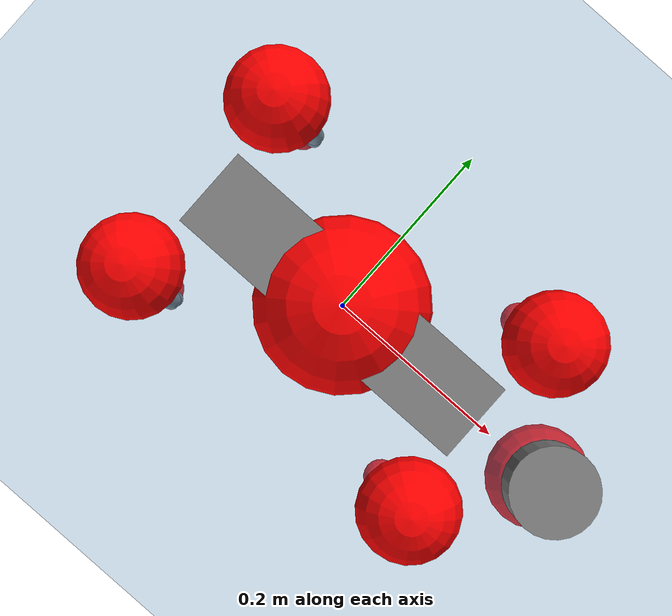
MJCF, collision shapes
<mujoco model="go2">
  <compiler angle="radian" assetdir="assets" balanceinertia="true" inertiafromgeom="false"/>

  <option timestep="0.005" density="1.2" viscosity="2e-05"/>

  <size nkey="1"/>

  <visual>
    <quality shadowsize="8192"/>
    <map shadowclip="0.5"/>
  </visual>

  <default>
    <default class="/">
      <geom contype="0" conaffinity="0" group="1" solref="-1000 -80"/>
      <site size="0.01 0.005 0.005" group="5"/>
      <general forcelimited="true" biastype="affine" gainprm="20" biasprm="0 -20 -0.5"/>
      <default class="go2">
        <joint armature="0.01" damping="0.01" frictionloss="0.2"/>
        <geom condim="1" margin="0.001"/>
        <default class="visual">
          <geom type="mesh" group="2"/>
        </default>
        <default class="collision">
          <geom group="3"/>
          <default class="foot">
            <geom size="0.022 0 0" condim="6" priority="1" friction="0.8 0.02 0.01" solimp="0.015 1 0.022"/>
          </default>
        </default>
        <default class="reward_collision_sphere">
          <geom group="5" rgba="1 0 0 1"/>
        </default>
      </default>
    </default>
  </default>

  <asset>
    <texture type="skybox" colorspace="auto" name="//unnamed_texture_0" builtin="gradient" rgb1="0.95 0.95 0.95" rgb2="0.95 0.95 0.95" width="100" height="600"/>
    <texture type="2d" colorspace="auto" name="texplane" builtin="checker" rgb1="0.345 0.575 0.748" rgb2="0.345 0.575 0.748" markrgb="1 1 1" width="512" height="512"/>
    <material name="MatPlane" class="/" texture="texplane" texuniform="true" texrepeat="2 2" specular="0.9"/>
    <material name="metal" class="/" rgba="0.9 0.95 0.95 1"/>
    <material name="black" class="/" rgba="0 0 0 1"/>
    <material name="white" class="/"/>
    <material name="gray" class="/" rgba="0.671705 0.692426 0.77427 1"/>
    <mesh name="base_0" class="/" file="base_0.obj"/>
    <mesh name="base_1" class="/" file="base_1.obj"/>
    <mesh name="base_2" class="/" file="base_2.obj"/>
    <mesh name="base_3" class="/" file="base_3.obj"/>
    <mesh name="base_4" class="/" file="base_4.obj"/>
    <mesh name="hip_0" class="/" file="hip_0.obj"/>
    <mesh name="hip_1" class="/" file="hip_1.obj"/>
    <mesh name="thigh_0" class="/" file="thigh_0.obj"/>
    <mesh name="thigh_1" class="/" file="thigh_1.obj"/>
    <mesh name="thigh_mirror_0" class="/" file="thigh_mirror_0.obj"/>
    <mesh name="thigh_mirror_1" class="/" file="thigh_mirror_1.obj"/>
    <mesh name="calf_0" class="/" file="calf_0.obj"/>
    <mesh name="calf_1" class="/" file="calf_1.obj"/>
    <mesh name="calf_mirror_0" class="/" file="calf_mirror_0.obj"/>
    <mesh name="calf_mirror_1" class="/" file="calf_mirror_1.obj"/>
    <mesh name="foot" class="/" file="foot.obj"/>
  </asset>

  <worldbody>
    <geom name="floor" class="/" size="100 100 0.125" type="plane" group="0" material="MatPlane"/>
    <light name="toplight_shadow" class="/" pos="0 0 5" dir="0.0990148 0.0990148 -0.990148" type="directional" ambient="0.04 0.04 0.04" diffuse="0.55 0.55 0.55" specular="0.12 0.12 0.12"/>
    <light name="toplight_fill" class="/" pos="0 0 5" dir="0.0990148 0.0990148 -0.990148" type="directional" castshadow="false" ambient="0.04 0.04 0.04" diffuse="0.3 0.3 0.3" specular="0.08 0.08 0.08"/>
    <body name="trunk" childclass="go2" pos="-0.000476471 9.69588e-05 0.000186789" quat="1 0.000125871 -1.94376e-05 -6.89365e-05">
      <inertial pos="0.0199688 0.00049726 -0.00455623" quat="0.00116388 0.714035 -0.00295193 0.700103" mass="5.56273" diaginertia="0.0962804 0.0845453 0.0102349"/>
      <joint name="//unnamed_joint_0" type="free" armature="0" damping="0" frictionloss="0"/>
      <geom name="//unnamed_geom_1" class="visual" material="black" mesh="base_0"/>
      <geom name="//unnamed_geom_2" class="visual" material="black" mesh="base_1"/>
      <geom name="//unnamed_geom_3" class="visual" material="black" mesh="base_2"/>
      <geom name="//unnamed_geom_4" class="visual" material="white" mesh="base_3"/>
      <geom name="//unnamed_geom_5" class="visual" material="gray" mesh="base_4"/>
      <geom name="trunk_1" class="collision" size="0.175028 0.0435012 0.0530389" type="box"/>
      <geom name="trunk_2" class="collision" size="0.0465254 0.0418728" pos="0.279236 0 0.00839946" type="cylinder"/>
      <geom name="trunk_3" class="collision" size="0.0437338" pos="0.287075 0 -0.0503968"/>
      <geom name="//unnamed_geom_9" class="reward_collision_sphere" size="0.0930507"/>
      <geom name="//unnamed_geom_10" class="reward_collision_sphere" size="0.0558304" pos="0.274337 0 -0.0377976"/>
      <site name="imu" pos="-0.0255161 -0.000173543 0.0361035" size="0.00930507"/>
      <camera name="track" pos="0 -1.9436 0" quat="0.707107 0.707107 0 0" mode="trackcom"/>
      <camera name="ego_camera" pos="0.30569 0 0.0377976" quat="-0.5 -0.5 0.5 0.5"/>
      <body name="FL_hip" pos="0.189938 0.0463587 0.00260372" quat="1 9.33182e-06 -1.8825e-05 -4.16336e-06">
        <inertial pos="-0.00517591 0.00287528 -4.63149e-05" quat="0.497309 0.499017 0.505482 0.498151" mass="0.538446" diaginertia="0.000793491 0.000517116 0.000199393"/>
        <joint name="FL_hip_joint" pos="0 0 0" axis="0.999995 -0.00313409 0.000107853" stiffness="0.00337767" range="-1.04705 1.04738" armature="0.0093308" damping="0.00355244" frictionloss="0.194212"/>
        <geom name="//unnamed_geom_11" class="visual" material="metal" mesh="hip_0"/>
        <geom name="//unnamed_geom_12" class="visual" material="gray" mesh="hip_1"/>
        <geom name="//unnamed_geom_13" class="collision" size="0.0428033 0.0186101" pos="0 0.0777439 0" quat="0.707107 0.707107 0 0" type="cylinder"/>
        <geom name="//unnamed_geom_14" class="reward_collision_sphere" size="0.0558304" pos="0 0.0680259 0"/>
        <body name="FL_thigh" pos="0.000228133 0.092954 0.00106507" quat="1 0.000110819 -9.46778e-08 4.08082e-05">
          <inertial pos="-0.00394511 -0.0215958 -0.027999" quat="0.829432 0.0877238 -0.0224393 0.551221" mass="0.941661" diaginertia="0.00539714 0.00505979 0.00037053"/>
          <joint name="FL_thigh_joint" pos="0 0 0" axis="-0.00568132 0.999978 -0.00334684" stiffness="0.00611559" range="-1.57658 3.47521" armature="0.00907625" damping="0.00395864" frictionloss="0.192839"/>
          <geom name="//unnamed_geom_15" class="visual" material="metal" mesh="thigh_0"/>
          <geom name="//unnamed_geom_16" class="visual" material="gray" mesh="thigh_1"/>
          <geom name="//unnamed_geom_17" class="collision" size="0.099099 0.0113987 0.0158186" pos="0 0 -0.0894543" quat="0.707107 0 0.707107 0" type="box"/>
          <body name="FL_calf" pos="-0.000503503 -0.000938141 -0.178978" quat="1 1.0285e-05 0.000127486 0.0001235">
            <inertial pos="0.00626697 -6.40663e-05 -0.117551" quat="0.710599 0.00132351 -0.00359104 0.703587" mass="0.193489" diaginertia="0.00135131 0.00126005 2.22609e-05"/>
            <joint name="FL_calf_joint" pos="0 0 0" axis="0.00483554 0.999987 -0.00142111" stiffness="0.000448523" range="-2.74169 -0.836832" armature="0.00943278" damping="0.00234108" frictionloss="0.187305"/>
            <geom name="//unnamed_geom_18" class="visual" material="gray" mesh="calf_0"/>
            <geom name="//unnamed_geom_19" class="visual" material="black" mesh="calf_1"/>
            <geom name="FL_calf0" class="collision" size="0.0111661 0.0558304" pos="0.00783821 0 -0.0503968" quat="0.994493 0 -0.104807 0" type="cylinder"/>
            <geom name="//unnamed_geom_21" class="collision" size="0.0102356 0.0302415" pos="0.0195955 0 -0.124312" quat="0.999688 0 0.0249974 0" type="cylinder"/>
            <geom name="//unnamed_geom_22" class="visual" pos="0 0 -0.178909" quat="1 0 0 0" material="black" mesh="foot"/>
            <geom name="FL_foot" class="foot" size="0.0180196" pos="-0.00195955 0 -0.178909"/>
            <geom name="//unnamed_geom_24" class="reward_collision_sphere" size="0.0232627"/>
            <geom name="//unnamed_geom_25" class="reward_collision_sphere" size="0.0232627" pos="-0.00195955 0 -0.178909"/>
            <site name="FL_foot" class="foot" pos="-0.00195955 0 -0.178909" size="0.00930507"/>
          </body>
        </body>
      </body>
      <body name="FR_hip" pos="0.190331 -0.0447115 0.000152801" quat="1 2.21249e-06 -2.75405e-06 3.33179e-05">
        <inertial pos="-0.00432707 -0.00246588 0.000546984" quat="0.497568 0.506215 0.49999 0.496167" mass="0.549485" diaginertia="0.000807214 0.000516801 0.00020316"/>
        <joint name="FR_hip_joint" pos="0 0 0" axis="1 0.000506364 0.000428734" stiffness="0.000702946" range="-1.04402 1.05133" armature="0.00928127" damping="0.0161802" frictionloss="0.186953"/>
        <geom name="//unnamed_geom_26" class="visual" pos="0 1.14864e-09 4.92677e-08" quat="4.63268e-05 1 0 0" material="metal" mesh="hip_0"/>
        <geom name="//unnamed_geom_27" class="visual" pos="0 1.86209e-09 -1.21858e-07" quat="4.63268e-05 1 0 0" material="gray" mesh="hip_1"/>
        <geom name="//unnamed_geom_28" class="collision" size="0.0428033 0.0186101" pos="0 -0.0777439 0" quat="0.707107 0.707107 0 0" type="cylinder"/>
        <geom name="//unnamed_geom_29" class="reward_collision_sphere" size="0.0558304" pos="0 -0.0680259 0"/>
        <body name="FR_thigh" pos="-0.000252536 -0.0923892 0.000696649" quat="1 2.75165e-06 4.57606e-05 0.000139969">
          <inertial pos="-0.00339667 0.021464 -0.0265753" quat="0.551831 -0.0176705 0.0877516 0.829138" mass="0.915728" diaginertia="0.00540597 0.0050805 0.000365575"/>
          <joint name="FR_thigh_joint" pos="0 0 0" axis="-0.000450482 -1 0.000263189" range="-3.48681 1.56125" armature="0.00967902" damping="0.016044" frictionloss="0.184634"/>
          <geom name="//unnamed_geom_30" class="visual" material="metal" mesh="thigh_mirror_0"/>
          <geom name="//unnamed_geom_31" class="visual" material="gray" mesh="thigh_mirror_1"/>
          <geom name="//unnamed_geom_32" class="collision" size="0.099099 0.0113987 0.0158186" pos="0 0 -0.0894543" quat="0.707107 0 0.707107 0" type="box"/>
          <body name="FR_calf" pos="0.000364308 -0.000361577 -0.178886" quat="1 0.000383162 -5.89767e-05 -0.000127509">
            <inertial pos="0.00699617 0.000740896 -0.119198" quat="0.703928 -0.00443415 0.000510424 0.710258" mass="0.190796" diaginertia="0.00133074 0.00126181 2.19712e-05"/>
            <joint name="FR_calf_joint" pos="0 0 0" axis="0.00102693 -0.999999 0.0012929" range="0.836668 2.73666" armature="0.00894872" damping="0.00894405" frictionloss="0.183357"/>
            <geom name="//unnamed_geom_33" class="visual" material="gray" mesh="calf_mirror_0"/>
            <geom name="//unnamed_geom_34" class="visual" material="black" mesh="calf_mirror_1"/>
            <geom name="FR_calf0" class="collision" size="0.0120966 0.0558304" pos="0.00979777 0 -0.0503968" quat="0.995004 0 -0.0998334 0" type="cylinder"/>
            <geom name="//unnamed_geom_36" class="collision" size="0.0102356 0.0302415" pos="0.0195955 0 -0.124312" quat="0.999688 0 0.0249974 0" type="cylinder"/>
            <geom name="//unnamed_geom_37" class="visual" pos="0 0 -0.178909" quat="1 0 0 0" material="black" mesh="foot"/>
            <geom name="FR_foot" class="foot" size="0.0215392" pos="-0.00195955 0 -0.178909"/>
            <geom name="//unnamed_geom_39" class="reward_collision_sphere" size="0.0232627"/>
            <geom name="//unnamed_geom_40" class="reward_collision_sphere" size="0.0232627" pos="-0.00195955 0 -0.178909"/>
            <site name="FR_foot" class="foot" pos="-0.00195955 0 -0.178909" size="0.00930507"/>
          </body>
        </body>
      </body>
      <body name="RL_hip" pos="-0.189956 0.0460104 -0.000604705" quat="1 -0.000213759 2.53772e-05 -0.00019273">
        <inertial pos="0.00526554 0.00135094 -0.000979399" quat="0.506836 0.496312 0.499157 0.497628" mass="0.546835" diaginertia="0.00080541 0.000513925 0.000202365"/>
        <joint name="RL_hip_joint" pos="0 0 0" axis="-0.999823 0.00476515 -0.0181809" stiffness="0.00244127" range="-1.04979 1.05229" armature="0.00939334" damping="0.00858389" frictionloss="0.186219"/>
        <geom name="//unnamed_geom_41" class="visual" pos="-1.21815e-09 0 -2.38785e-07" quat="4.63268e-05 0 1 0" material="metal" mesh="hip_0"/>
        <geom name="//unnamed_geom_42" class="visual" pos="-1.97476e-09 0 -2.11768e-07" quat="4.63268e-05 0 1 0" material="gray" mesh="hip_1"/>
        <geom name="//unnamed_geom_43" class="collision" size="0.0428033 0.0186101" pos="0 0.0777439 0" quat="0.707107 0.707107 0 0" type="cylinder"/>
        <geom name="//unnamed_geom_44" class="reward_collision_sphere" size="0.0558304" pos="0 0.0680259 0"/>
        <body name="RL_thigh" pos="0.00019925 0.0922586 -0.00123113" quat="1 2.78632e-05 -2.72877e-05 5.24956e-06">
          <inertial pos="-0.00412517 -0.0212871 -0.0276443" quat="0.829532 0.0847737 -0.0200652 0.551623" mass="0.939271" diaginertia="0.00540308 0.0050622 0.000371714"/>
          <joint name="RL_thigh_joint" pos="0 0 0" axis="0.00089489 0.999998 0.00180966" stiffness="0.00148901" range="-0.512569 4.5567" armature="0.00947931" damping="0.0109829" frictionloss="0.186182"/>
          <geom name="//unnamed_geom_45" class="visual" material="metal" mesh="thigh_0"/>
          <geom name="//unnamed_geom_46" class="visual" material="gray" mesh="thigh_1"/>
          <geom name="//unnamed_geom_47" class="collision" size="0.099099 0.0113987 0.0158186" pos="0 0 -0.0894543" quat="0.707107 0 0.707107 0" type="box"/>
          <body name="RL_calf" pos="0.000745339 -0.00112651 -0.179497" quat="1 3.36468e-05 6.65306e-05 -5.61206e-05">
            <inertial pos="0.0056224 -0.000767578 -0.118957" quat="0.712131 0.00478552 -0.00293585 0.702024" mass="0.196151" diaginertia="0.00137079 0.0012711 2.24948e-05"/>
            <joint name="RL_calf_joint" pos="0 0 0" axis="-0.00483139 0.999959 0.00762623" range="-2.73144 -0.819614" armature="0.00926781" damping="0" frictionloss="0.192074"/>
            <geom name="//unnamed_geom_48" class="visual" material="gray" mesh="calf_0"/>
            <geom name="//unnamed_geom_49" class="visual" material="black" mesh="calf_1"/>
            <geom name="RL_calf0" class="collision" size="0.0120966 0.0558304" pos="0.00979777 0 -0.0503968" quat="0.995004 0 -0.0998334 0" type="cylinder"/>
            <geom name="//unnamed_geom_51" class="collision" size="0.0102356 0.0302415" pos="0.0195955 0 -0.124312" quat="0.999688 0 0.0249974 0" type="cylinder"/>
            <geom name="//unnamed_geom_52" class="visual" pos="0 0 -0.178909" quat="1 0 0 0" material="black" mesh="foot"/>
            <geom name="RL_foot" class="foot" size="0.0180209" pos="-0.00195955 0 -0.178909"/>
            <geom name="//unnamed_geom_54" class="reward_collision_sphere" size="0.0232627"/>
            <geom name="//unnamed_geom_55" class="reward_collision_sphere" size="0.0232627" pos="-0.00195955 0 -0.178909"/>
            <site name="RL_foot" class="foot" pos="-0.00195955 0 -0.178909" size="0.00930507"/>
          </body>
        </body>
      </body>
      <body name="RR_hip" pos="-0.188908 -0.0454182 -0.00130917" quat="1 -0.000144931 -0.000152332 1.03353e-06">
        <inertial pos="0.00595241 -0.00252526 -2.42335e-06" quat="0.499903 0.499101 0.498274 0.50271" mass="0.53884" diaginertia="0.000794617 0.000514278 0.000199483"/>
        <joint name="RR_hip_joint" pos="0 0 0" axis="-1 -6.30404e-05 6.97542e-06" range="-1.03944 1.03753" armature="0.00938387" damping="0.00705874" frictionloss="0.186637"/>
        <geom name="//unnamed_geom_56" class="visual" pos="1.21787e-09 1.14864e-09 -2.88052e-07" quat="2.14617e-09 4.63268e-05 4.63268e-05 -1" material="metal" mesh="hip_0"/>
        <geom name="//unnamed_geom_57" class="visual" pos="1.97544e-09 1.86209e-09 -8.99101e-08" quat="2.14617e-09 4.63268e-05 4.63268e-05 -1" material="gray" mesh="hip_1"/>
        <geom name="//unnamed_geom_58" class="collision" size="0.0428033 0.0186101" pos="0 -0.0777439 0" quat="0.707107 0.707107 0 0" type="cylinder"/>
        <geom name="//unnamed_geom_59" class="reward_collision_sphere" size="0.0558304" pos="0 -0.0680259 0"/>
        <body name="RR_thigh" pos="0.000404992 -0.0932355 -0.00124669" quat="1 5.66451e-05 -0.000203546 -0.00020604">
          <inertial pos="-0.0033514 0.0210091 -0.0270327" quat="0.551201 -0.0202008 0.0846144 0.829825" mass="0.947344" diaginertia="0.00548228 0.00513499 0.000371642"/>
          <joint name="RR_thigh_joint" pos="0 0 0" axis="0.00170102 -0.99998 -0.00614966" range="-4.55349 0.515861" armature="0.00918929" damping="0.0146775" frictionloss="0.187437"/>
          <geom name="//unnamed_geom_60" class="visual" material="metal" mesh="thigh_mirror_0"/>
          <geom name="//unnamed_geom_61" class="visual" material="gray" mesh="thigh_mirror_1"/>
          <geom name="//unnamed_geom_62" class="collision" size="0.099099 0.0113987 0.0158186" pos="0 0 -0.0894543" quat="0.707107 0 0.707107 0" type="box"/>
          <body name="RR_calf" pos="0.000690739 -0.000247741 -0.179868" quat="1 -1.18082e-05 -1.05108e-05 -9.56035e-05">
            <inertial pos="0.00532394 0.000952925 -0.118497" quat="0.70613 -0.00569177 0.00105952 0.708059" mass="0.193546" diaginertia="0.00134985 0.00126766 2.2377e-05"/>
            <joint name="RR_calf_joint" pos="0 0 0" axis="0.000904928 -0.999992 0.00386227" range="0.833291 2.72143" armature="0.00929082" damping="0.00892815" frictionloss="0.183658"/>
            <geom name="//unnamed_geom_63" class="visual" material="gray" mesh="calf_mirror_0"/>
            <geom name="//unnamed_geom_64" class="visual" material="black" mesh="calf_mirror_1"/>
            <geom name="RR_calf0" class="collision" size="0.0120966 0.0558304" pos="0.00979777 0 -0.0503968" quat="0.995004 0 -0.0998334 0" type="cylinder"/>
            <geom name="//unnamed_geom_66" class="collision" size="0.0102356 0.0302415" pos="0.0195955 0 -0.124312" quat="0.999688 0 0.0249974 0" type="cylinder"/>
            <geom name="//unnamed_geom_67" class="visual" pos="0 0 -0.178909" quat="1 0 0 0" material="black" mesh="foot"/>
            <geom name="RR_foot" class="foot" size="0.0221941" pos="-0.00195955 0 -0.178909"/>
            <geom name="//unnamed_geom_69" class="reward_collision_sphere" size="0.0232627"/>
            <geom name="//unnamed_geom_70" class="reward_collision_sphere" size="0.0232627" pos="-0.00195955 0 -0.178909"/>
            <site name="RR_foot" class="foot" pos="-0.00195955 0 -0.178909" size="0.00930507"/>
          </body>
        </body>
      </body>
    </body>
  </worldbody>

  <contact>
    <pair class="/" geom1="floor" geom2="FL_foot" name="//unnamed_contact_0"/>
    <pair class="/" geom1="floor" geom2="FR_foot" name="//unnamed_contact_1"/>
    <pair class="/" geom1="floor" geom2="RL_foot" name="//unnamed_contact_2"/>
    <pair class="/" geom1="floor" geom2="RR_foot" name="//unnamed_contact_3"/>
  </contact>

  <actuator>
    <general name="FL_hip" class="/" joint="FL_hip_joint" forcerange="-22.6585 22.6585" gainprm="19.0151" biasprm="0 -19.0151 -0.475351"/>
    <general name="FL_thigh" class="/" joint="FL_thigh_joint" forcerange="-22.028 22.028" gainprm="19.0151" biasprm="0 -19.0151 -0.475351"/>
    <general name="FL_calf" class="/" joint="FL_calf_joint" forcerange="-41.8399 41.8399" gainprm="19.0151" biasprm="0 -19.0151 -0.475351"/>
    <general name="FR_hip" class="/" joint="FR_hip_joint" forcerange="-22.1479 22.1479" gainprm="19.0151" biasprm="0 -19.0151 -0.475351"/>
    <general name="FR_thigh" class="/" joint="FR_thigh_joint" forcerange="-21.2844 21.2844" gainprm="19.0151" biasprm="0 -19.0151 -0.475351"/>
    <general name="FR_calf" class="/" joint="FR_calf_joint" forcerange="-41.4575 41.4575" gainprm="19.0151" biasprm="0 -19.0151 -0.475351"/>
    <general name="RL_hip" class="/" joint="RL_hip_joint" forcerange="-22.1554 22.1554" gainprm="19.0151" biasprm="0 -19.0151 -0.475351"/>
    <general name="RL_thigh" class="/" joint="RL_thigh_joint" forcerange="-22.7896 22.7896" gainprm="19.0151" biasprm="0 -19.0151 -0.475351"/>
    <general name="RL_calf" class="/" joint="RL_calf_joint" forcerange="-42.2364 42.2364" gainprm="19.0151" biasprm="0 -19.0151 -0.475351"/>
    <general name="RR_hip" class="/" joint="RR_hip_joint" forcerange="-22.0869 22.0869" gainprm="19.0151" biasprm="0 -19.0151 -0.475351"/>
    <general name="RR_thigh" class="/" joint="RR_thigh_joint" forcerange="-21.6429 21.6429" gainprm="19.0151" biasprm="0 -19.0151 -0.475351"/>
    <general name="RR_calf" class="/" joint="RR_calf_joint" forcerange="-43.0654 43.0654" gainprm="19.0151" biasprm="0 -19.0151 -0.475351"/>
  </actuator>

  <sensor>
    <gyro site="imu" name="imu_angular_velocity"/>
    <velocimeter site="imu" name="imu_linear_velocity"/>
    <framelinvel objtype="site" objname="FL_foot" name="FL_foot_global_linear_velocity"/>
    <framelinvel objtype="site" objname="FR_foot" name="FR_foot_global_linear_velocity"/>
    <framelinvel objtype="site" objname="RL_foot" name="RL_foot_global_linear_velocity"/>
    <framelinvel objtype="site" objname="RR_foot" name="RR_foot_global_linear_velocity"/>
  </sensor>

  <keyframe>
    <key name="home" qpos="0 0 0.325 1 0 0 0 0.1 0.8 -1.5 -0.1 -0.8 1.5 -0.1 0.8 -1.5 0.1 -0.8 1.5"/>
  </keyframe>
</mujoco>
